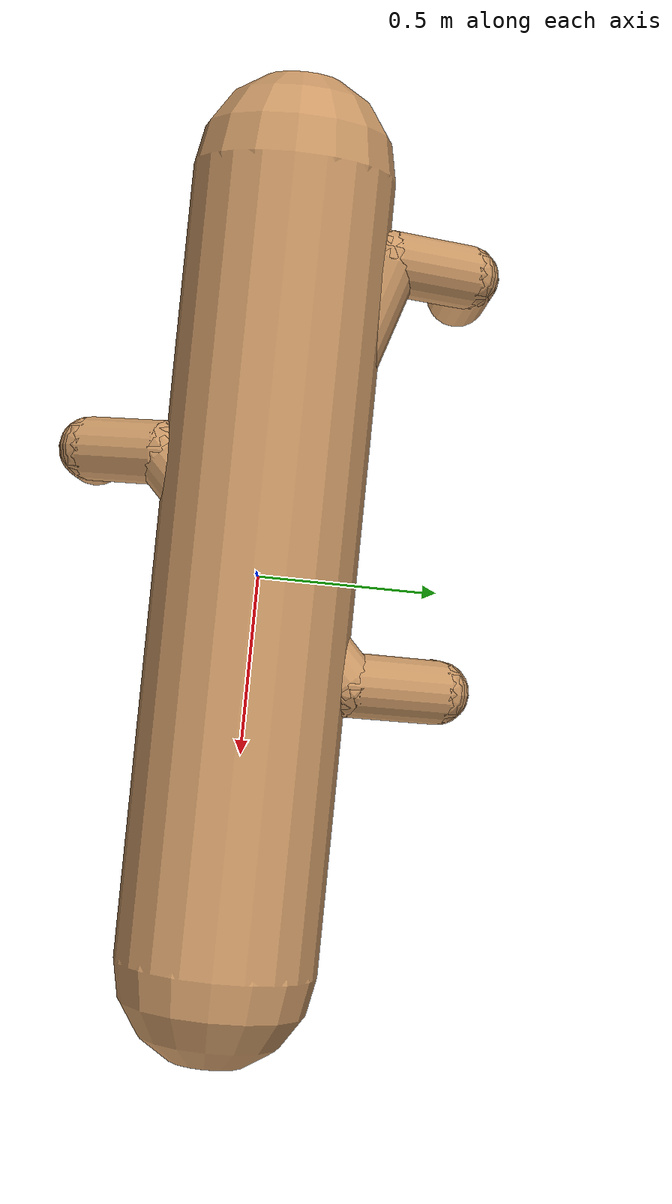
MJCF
<?xml version="1.0" ?>
<mujoco>
    <default>
        <joint armature="1" damping="1" limited="true"/>
        <geom condim="3" conaffinity="0" density="5.0" friction="1 0.5 0.5" margin="0.01" rgba="0.8 0.6 0.4 1"/>
    </default>
    <worldbody>
        <body name="Base" pos="0.0 0.0 0.75">
            <joint type="free" armature="0" damping="0" limited="false" margin="0.01" pos="0 0 0"/>
            <geom type="capsule" rgba="0.8 0.6 0.4 1" size="0.25 0.9790388864670969" euler="0 90 0"/>
            <camera name="track" mode="trackcom" pos="0 -3 0.3" xyaxes="1 0 0 0 0 1"/>
            <geom name="limb0" type="capsule" fromto="0 0 0 -0.7832311091736776 0.25 0.0" size="0.08"/>
            <body name="rod_0.1" pos="-0.7832311091736776 0.3522753630110649 -0.05113768150553244">
                <geom type="capsule" fromto="-0.0 -0.10227536301106488 0.05113768150553244 0.0 0.10227536301106488 -0.05113768150553244" size="0.08" name="geom_0.1"/>
                <site pos="0 0 0" quat="0.7071067811865476 -0.0 0.316227766016838 0.632455532033676" name="site_0.1"/>
                <joint type="hinge" pos="-0.0 -0.10227536301106488 0.05113768150553244" axis="0 0 1" range="-30 30" name="joint_Base=rod_0.1"/>
                <body pos="-0.0 -0.10227536301106488 0.05113768150553244" name="p0">
                    <site name="p0"/>
                </body>
                <body name="rod_1.2" pos="0.0 0.10227536301106488 -0.20835610063027557">
                    <geom type="capsule" fromto="-0.0 -0.0 0.15721841912474313 0.0 0.0 -0.15721841912474313" size="0.08" name="geom_1.2"/>
                    <site pos="0 0 0" quat="0.7071067811865476 -0.0 0.7071067811865476 0.0" name="site_1.2"/>
                    <joint type="hinge" pos="-0.0 -0.0 0.15721841912474313" axis="-1 1 0" range="30 70" name="joint_rod_0.1=rod_1.2"/>
                    <body pos="-0.0 -0.0 0.15721841912474313" name="p1">
                        <site name="p1"/>
                    </body>
                </body>
            </body>
            <geom name="limb1" type="capsule" fromto="0 0 0 -0.2610770363912258 -0.25 0.0" size="0.08"/>
            <body name="rod_9.10" pos="-0.2610770363912258 -0.3451945575243411 -0.04759727876217054">
                <geom type="capsule" fromto="-0.0 0.09519455752434108 0.04759727876217054 0.0 -0.09519455752434108 -0.04759727876217054" size="0.08" name="geom_9.10"/>
                <site pos="0 0 0" quat="0.7071067811865476 0.0 0.316227766016838 -0.632455532033676" name="site_9.10"/>
                <joint type="hinge" pos="-0.0 0.09519455752434108 0.04759727876217054" axis="0 0 1" range="-30 30" name="joint_Base=rod_9.10"/>
                <body pos="-0.0 0.09519455752434108 0.04759727876217054" name="p9">
                    <site name="p9"/>
                </body>
                <body name="rod_10.11" pos="0.0 -0.09519455752434108 -0.14443637109833465">
                    <geom type="capsule" fromto="-0.0 -0.0 0.09683909233616411 0.0 0.0 -0.09683909233616411" size="0.08" name="geom_10.11"/>
                    <site pos="0 0 0" quat="0.7071067811865476 -0.0 0.7071067811865476 0.0" name="site_10.11"/>
                    <joint type="hinge" pos="-0.0 -0.0 0.09683909233616411" axis="1 1 0" range="30 70" name="joint_rod_9.10=rod_10.11"/>
                    <body pos="-0.0 -0.0 0.09683909233616411" name="p10">
                        <site name="p10"/>
                    </body>
                </body>
            </body>
            <geom name="limb2" type="capsule" fromto="0 0 0 0.2610770363912259 0.25 0.0" size="0.08"/>
            <body name="rod_12.13" pos="0.2610770363912259 0.3660226600145407 -0.058011330007270344">
                <geom type="capsule" fromto="-0.0 -0.1160226600145407 0.058011330007270344 0.0 0.1160226600145407 -0.058011330007270344" size="0.08" name="geom_12.13"/>
                <site pos="0 0 0" quat="0.7071067811865476 -0.0 0.31622776601683794 0.632455532033676" name="site_12.13"/>
                <joint type="hinge" pos="-0.0 -0.1160226600145407 0.058011330007270344" axis="0 0 1" range="-30 30" name="joint_Base=rod_12.13"/>
                <body pos="-0.0 -0.1160226600145407 0.058011330007270344" name="p12">
                    <site name="p12"/>
                </body>
                <body name="rod_13.14" pos="0.0 0.1160226600145407 -0.1916449563325718">
                    <geom type="capsule" fromto="-0.0 -0.0 0.13363362632530146 0.0 0.0 -0.13363362632530146" size="0.08" name="geom_13.14"/>
                    <site pos="0 0 0" quat="0.7071067811865476 -0.0 0.7071067811865476 0.0" name="site_13.14"/>
                    <joint type="hinge" pos="-0.0 -0.0 0.13363362632530146" axis="-1 1 0" range="-70 -30" name="joint_rod_12.13=rod_13.14"/>
                    <body pos="-0.0 -0.0 0.13363362632530146" name="p13">
                        <site name="p13"/>
                    </body>
                </body>
            </body>
        </body>
    </worldbody>
    <actuator>
        <motor gear="150" ctrlrange="-1.0 1.0" ctrllimited="true" joint="joint_Base=rod_0.1"/>
        <motor gear="150" ctrlrange="-1.0 1.0" ctrllimited="true" joint="joint_rod_0.1=rod_1.2"/>
        <motor gear="150" ctrlrange="-1.0 1.0" ctrllimited="true" joint="joint_Base=rod_9.10"/>
        <motor gear="150" ctrlrange="-1.0 1.0" ctrllimited="true" joint="joint_rod_9.10=rod_10.11"/>
        <motor gear="150" ctrlrange="-1.0 1.0" ctrllimited="true" joint="joint_Base=rod_12.13"/>
        <motor gear="150" ctrlrange="-1.0 1.0" ctrllimited="true" joint="joint_rod_12.13=rod_13.14"/>
    </actuator>
    <sensor>
        <accelerometer site="site_0.1"/>
        <gyro site="site_0.1"/>
        <magnetometer site="site_0.1"/>
        <accelerometer site="site_1.2"/>
        <gyro site="site_1.2"/>
        <magnetometer site="site_1.2"/>
        <accelerometer site="site_9.10"/>
        <gyro site="site_9.10"/>
        <magnetometer site="site_9.10"/>
        <accelerometer site="site_10.11"/>
        <gyro site="site_10.11"/>
        <magnetometer site="site_10.11"/>
        <accelerometer site="site_12.13"/>
        <gyro site="site_12.13"/>
        <magnetometer site="site_12.13"/>
        <accelerometer site="site_13.14"/>
        <gyro site="site_13.14"/>
        <magnetometer site="site_13.14"/>
    </sensor>
    <contact>
        <pair geom1="geom_0.1" geom2="floor"/>
        <pair geom1="geom_1.2" geom2="floor"/>
        <pair geom1="geom_9.10" geom2="floor"/>
        <pair geom1="geom_10.11" geom2="floor"/>
        <pair geom1="geom_12.13" geom2="floor"/>
        <pair geom1="geom_13.14" geom2="floor"/>
    </contact>
</mujoco>
